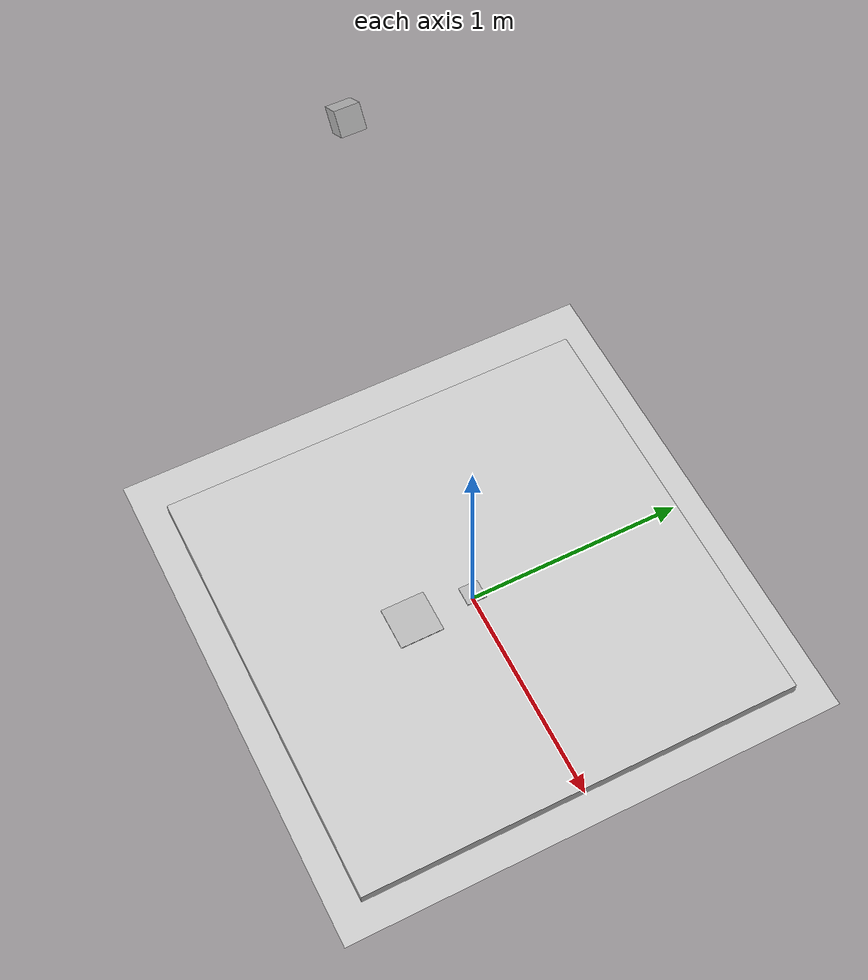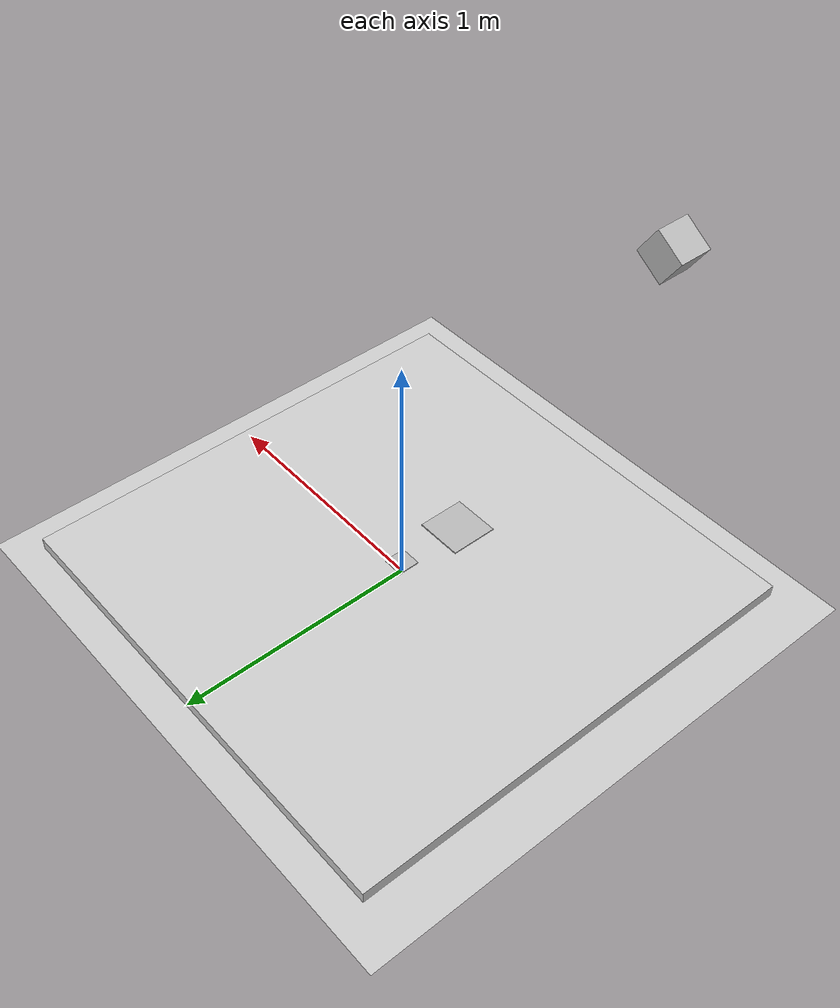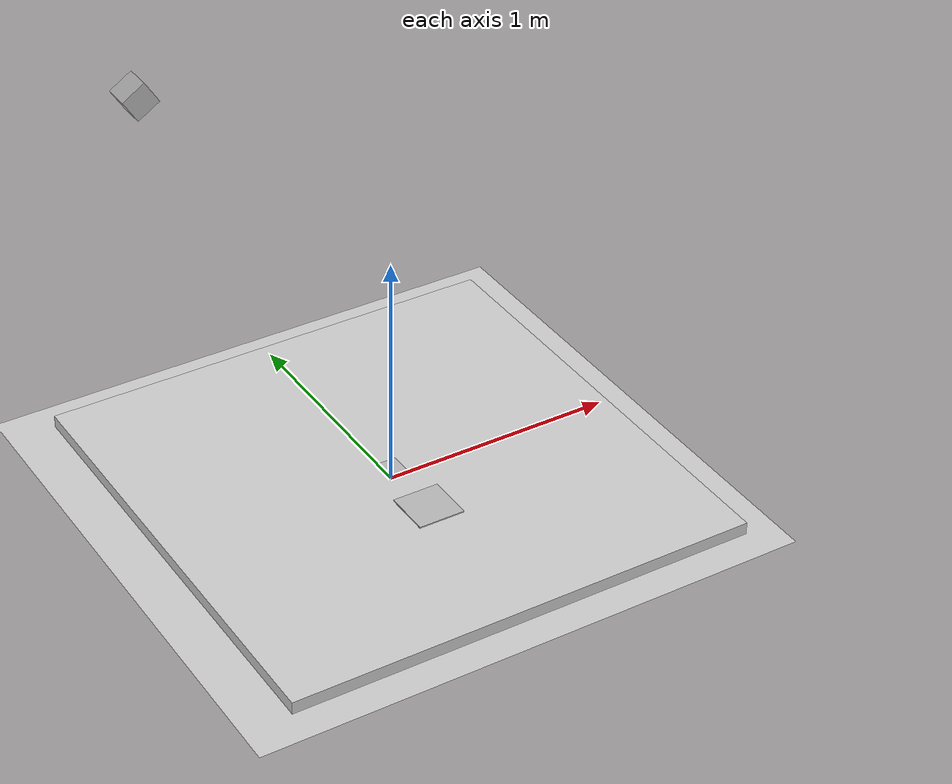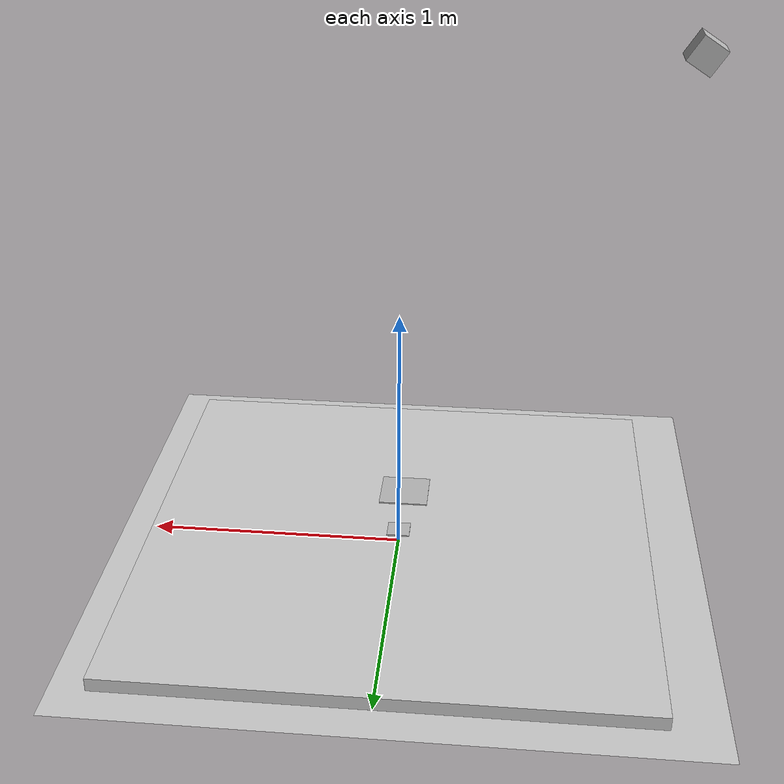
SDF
<sdf version="1.7">
 <world name="default">
  <model name="ground_plane">
   <static>1</static>
   <link name="link">
    <collision name="collision">
     <geometry><plane><normal>0 0 1</normal><size>100 100</size></plane></geometry>
     <surface>
      <contact><collide_bitmask>65535</collide_bitmask></contact>
      <friction><ode><mu>100</mu><mu2>50</mu2></ode></friction>
     </surface>
    </collision>
    <visual name="visual">
     <cast_shadows>0</cast_shadows>
     <geometry><plane><normal>0 0 1</normal><size>100 100</size></plane></geometry>
     <material>
      <script><uri>file://media/materials/scripts/gazebo.material</uri><name>Gazebo/Grey</name></script>
     </material>
    </visual>
   </link>
  </model>
  <light name="sun" type="directional">
   <pose>0 0 10 0 -0 0</pose>
   <diffuse>0.8 0.8 0.8 1</diffuse>
   <specular>0.2 0.2 0.2 1</specular>
   <attenuation>
    <range>1000</range>
    <constant>0.9</constant>
    <linear>0.01</linear>
    <quadratic>0.001</quadratic>
   </attenuation>
   <direction>-0.5 0.1 -0.9</direction>
   <spot><inner_angle>0</inner_angle><outer_angle>0</outer_angle><falloff>0</falloff></spot>
  </light>
  <model name="my_mesh1">
   <pose>0 0 0.05 0 -0 0</pose>
   <static>1</static>
   <link name="body">
    <visual name="visual"><geometry><mesh><uri>file://Cube_Tag1_0.09m.dae</uri></mesh></geometry></visual>
   </link>
  </model>
  <model name="my_mesh2">
   <pose>0 -0.286757 0.05 0 -0 0</pose>
   <static>1</static>
   <link name="body">
    <visual name="visual"><geometry><mesh><uri>file://Cube_Tag2_0.2m.dae</uri></mesh></geometry></visual>
   </link>
  </model>
  <model name="my_mesh3">
   <static>1</static>
   <link name="body">
    <visual name="visual"><geometry><mesh><uri>file://GreyBase.dae</uri></mesh></geometry></visual>
   </link>
  </model>
  <model name="camera">
   <static>1</static>
   <pose>-1 0 2 0 1 0</pose>
   <link name="link">
    <visual name="visual"><geometry><box><size>0.1 0.1 0.1</size></box></geometry></visual>
    <sensor name="my_camera" type="camera">
     <camera>
      <save enabled="1"><path>camera_save_tutorial</path></save>
      <horizontal_fov>1.047</horizontal_fov>
      <image><width>1920</width><height>1080</height></image>
      <clip><near>0.1</near><far>100</far></clip>
     </camera>
     <always_on>1</always_on>
     <update_rate>1</update_rate>
    </sensor>
   </link>
  </model>
  <gravity>0 0 -9.8</gravity>
  <magnetic_field>6e-06 2.3e-05 -4.2e-05</magnetic_field>
  <atmosphere type="adiabatic"/>
  <physics type="ode">
   <max_step_size>0.001</max_step_size>
   <real_time_factor>1</real_time_factor>
   <real_time_update_rate>1000</real_time_update_rate>
  </physics>
  <scene><ambient>0.4 0.4 0.4 1</ambient><background>0.7 0.7 0.7 1</background><shadows>1</shadows></scene>
  <audio><device>default</device></audio>
  <spherical_coordinates>
   <surface_model>EARTH_WGS84</surface_model>
   <latitude_deg>0</latitude_deg>
   <longitude_deg>0</longitude_deg>
   <elevation>0</elevation>
   <heading_deg>0</heading_deg>
  </spherical_coordinates>
  <light name="user_spot_light_0" type="spot">
   <pose>-0.006806 -0.012423 1 0 -0 0</pose>
   <diffuse>0.5 0.5 0.5 1</diffuse>
   <specular>0.1 0.1 0.1 1</specular>
   <direction>0 0 -1</direction>
   <attenuation>
    <range>20</range>
    <constant>0.5</constant>
    <linear>0.01</linear>
    <quadratic>0.001</quadratic>
   </attenuation>
   <cast_shadows>0</cast_shadows>
   <spot><inner_angle>0.6</inner_angle><outer_angle>1</outer_angle><falloff>1</falloff></spot>
  </light>
  <light name="user_point_light_0" type="point">
   <pose>0.279423 0.138144 1 0 -0 0</pose>
   <diffuse>0.5 0.5 0.5 1</diffuse>
   <specular>0.1 0.1 0.1 1</specular>
   <attenuation>
    <range>20</range>
    <constant>0.5</constant>
    <linear>0.01</linear>
    <quadratic>0.001</quadratic>
   </attenuation>
   <cast_shadows>0</cast_shadows>
   <direction>0 0 -1</direction>
   <spot><inner_angle>0</inner_angle><outer_angle>0</outer_angle><falloff>0</falloff></spot>
  </light>
  <light name="user_point_light_1" type="point">
   <pose>0.636163 -1.21108 1 0 -0 0</pose>
   <diffuse>0.5 0.5 0.5 1</diffuse>
   <specular>0.1 0.1 0.1 1</specular>
   <attenuation>
    <range>20</range>
    <constant>0.5</constant>
    <linear>0.01</linear>
    <quadratic>0.001</quadratic>
   </attenuation>
   <cast_shadows>0</cast_shadows>
   <direction>0 0 -1</direction>
   <spot><inner_angle>0</inner_angle><outer_angle>0</outer_angle><falloff>0</falloff></spot>
  </light>
 </world>
</sdf>
